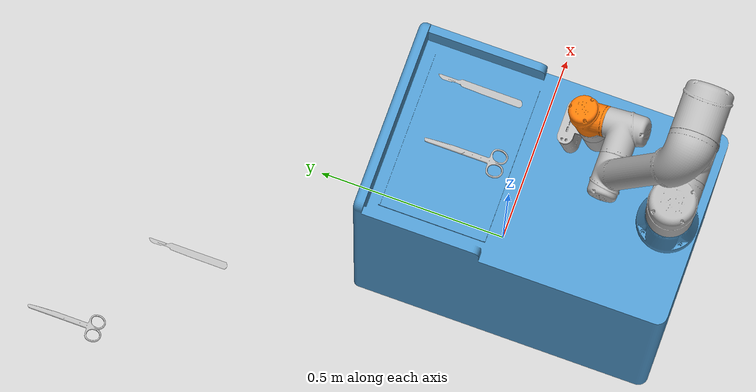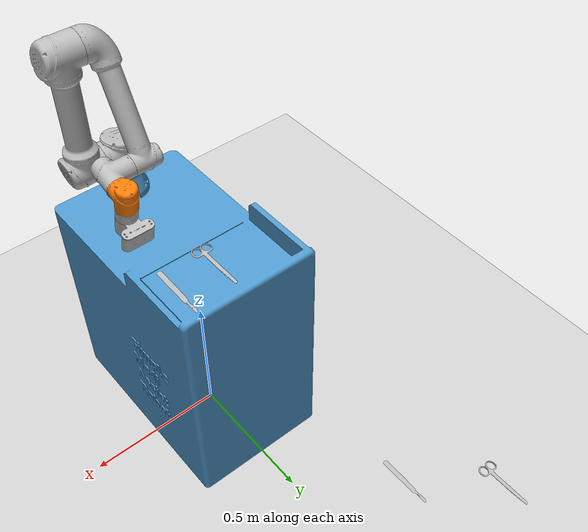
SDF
<sdf version='1.7'>
  <world name='default'>
    <light name='sun' type='directional'>
      <cast_shadows>1</cast_shadows>
      <pose>0 0 10 0 -0 0</pose>
      <diffuse>0.8 0.8 0.8 1</diffuse>
      <specular>0.2 0.2 0.2 1</specular>
      <attenuation>
        <range>1000</range>
        <constant>0.9</constant>
        <linear>0.01</linear>
        <quadratic>0.001</quadratic>
      </attenuation>
      <direction>-0.5 0.1 -0.9</direction>
      <spot>
        <inner_angle>0</inner_angle>
        <outer_angle>0</outer_angle>
        <falloff>0</falloff>
      </spot>
    </light>
    <model name='ground_plane'>
      <static>1</static>
      <link name='link'>
        <collision name='collision'>
          <geometry>
            <plane>
              <normal>0 0 1</normal>
              <size>100 100</size>
            </plane>
          </geometry>
          <surface>
            <friction>
              <ode>
                <mu>100</mu>
                <mu2>50</mu2>
              </ode>
              <torsional>
                <ode/>
              </torsional>
            </friction>
            <contact>
              <ode/>
            </contact>
            <bounce/>
          </surface>
          <max_contacts>10</max_contacts>
        </collision>
        <visual name='visual'>
          <cast_shadows>0</cast_shadows>
          <geometry>
            <plane>
              <normal>0 0 1</normal>
              <size>100 100</size>
            </plane>
          </geometry>
          <material>
            <script>
              <uri>file://media/materials/scripts/gazebo.material</uri>
              <name>Gazebo/Grey</name>
            </script>
          </material>
        </visual>
        <self_collide>0</self_collide>
        <enable_wind>0</enable_wind>
        <kinematic>0</kinematic>
      </link>
    </model>
    <gravity>0 0 -9.8</gravity>
    <magnetic_field>6e-06 2.3e-05 -4.2e-05</magnetic_field>
    <atmosphere type='adiabatic'/>
    <physics type='ode'>
      <max_step_size>0.001</max_step_size>
      <real_time_factor>1</real_time_factor>
      <real_time_update_rate>1000</real_time_update_rate>
    </physics>
    <scene>
      <ambient>0.4 0.4 0.4 1</ambient>
      <background>0.7 0.7 0.7 1</background>
      <shadows>1</shadows>
    </scene>
    <audio>
      <device>default</device>
    </audio>
    <wind/>
    <spherical_coordinates>
      <surface_model>EARTH_WGS84</surface_model>
      <latitude_deg>0</latitude_deg>
      <longitude_deg>0</longitude_deg>
      <elevation>0</elevation>
      <heading_deg>0</heading_deg>
    </spherical_coordinates>
    <model name='Model'>
      <joint name='virtual_joint' type='fixed'>
        <pose relative_to='__model__'>0 0 0 0 -0 0</pose>
        <parent>world</parent>
        <child>base_link</child>
      </joint>
      <link name='base_link'>
        <pose relative_to='virtual_joint'>0 0 0 0 -0 0</pose>
        <inertial>
          <pose>0.000917 -0.050562 0.50877 0 -0 0</pose>
          <mass>215.728</mass>
          <inertia>
            <ixx>34.1786</ixx>
            <ixy>-0.026992</ixy>
            <ixz>0.035376</ixz>
            <iyy>24.0907</iyy>
            <iyz>-1.45857</iyz>
            <izz>26.7821</izz>
          </inertia>
        </inertial>
        <collision name='base_link_collision'>
          <pose>0 0 0 0 -0 0</pose>
          <geometry>
            <mesh>
              <scale>1 1 1</scale>
              <uri>model://ros2_description/meshes/dae/base_linkV02.dae</uri>
            </mesh>
          </geometry>
          <max_contacts>10</max_contacts>
          <surface>
            <contact>
              <ode/>
            </contact>
            <bounce/>
            <friction>
              <torsional>
                <ode/>
              </torsional>
              <ode/>
            </friction>
          </surface>
        </collision>
        <visual name='base_link_visual'>
          <pose>0 0 0 0 -0 0</pose>
          <geometry>
            <mesh>
              <scale>1 1 1</scale>
              <uri>model://ros2_description/meshes/dae/base_linkV02.dae</uri>
            </mesh>
          </geometry>
        </visual>
        <self_collide>0</self_collide>
        <enable_wind>0</enable_wind>
        <kinematic>0</kinematic>
      </link>
      <joint name='Revolute_1' type='revolute'>
        <pose relative_to='base_link'>-0.003488 -0.397366 0.899482 0 -0 0</pose>
        <parent>base_link</parent>
        <child>link_1__1__1</child>
        <axis>
          <xyz>0 0 1</xyz>
          <limit>
            <lower>0</lower>
            <upper>6.28318</upper>
            <effort>100</effort>
            <velocity>100</velocity>
          </limit>
          <dynamics>
            <spring_reference>0</spring_reference>
            <spring_stiffness>0</spring_stiffness>
          </dynamics>
        </axis>
      </joint>
      <link name='link_1__1__1'>
        <pose relative_to='Revolute_1'>0 0 0 0 -0 0</pose>
        <inertial>
          <pose>0.010911 4e-06 0.06352 0 -0 0</pose>
          <mass>12.6229</mass>
          <inertia>
            <ixx>0.027067</ixx>
            <ixy>-1e-06</ixy>
            <ixz>-0.000743</ixz>
            <iyy>0.030809</iyy>
            <iyz>-1e-06</iyz>
            <izz>0.026243</izz>
          </inertia>
        </inertial>
        <collision name='link_1__1__1_collision'>
          <pose>0.003488 0.397366 -0.899482 0 -0 0</pose>
          <geometry>
            <mesh>
              <scale>0.001 0.001 0.001</scale>
              <uri>model://ros2_description/meshes/link_1__1__1.stl</uri>
            </mesh>
          </geometry>
          <max_contacts>10</max_contacts>
          <surface>
            <contact>
              <ode/>
            </contact>
            <bounce/>
            <friction>
              <torsional>
                <ode/>
              </torsional>
              <ode/>
            </friction>
          </surface>
        </collision>
        <visual name='link_1__1__1_visual'>
          <pose>0.003488 0.397366 -0.899482 0 -0 0</pose>
          <geometry>
            <mesh>
              <scale>1 1 1</scale>
              <uri>model://ros2_description/meshes/dae/link_1.dae</uri>
            </mesh>
          </geometry>
        </visual>
        <self_collide>0</self_collide>
        <enable_wind>0</enable_wind>
        <kinematic>0</kinematic>
      </link>
      <joint name='Revolute_2' type='revolute'>
        <pose relative_to='link_1__1__1'>0.0744 0 0.0634 0 -0 0</pose>
        <parent>link_1__1__1</parent>
        <child>link_2__1__1</child>
        <axis>
          <xyz>1 0 0</xyz>
          <limit>
            <lower>0</lower>
            <upper>6.28318</upper>
            <effort>100</effort>
            <velocity>100</velocity>
          </limit>
          <dynamics>
            <spring_reference>0</spring_reference>
            <spring_stiffness>0</spring_stiffness>
          </dynamics>
        </axis>
      </joint>
      <link name='link_2__1__1'>
        <pose relative_to='Revolute_2'>0 0 0 0 -0 0</pose>
        <inertial>
          <pose>0.063478 0 0.2125 0 -0 0</pose>
          <mass>38.2979</mass>
          <inertia>
            <ixx>1.17613</ixx>
            <ixy>0</ixy>
            <ixz>0</ixz>
            <iyy>1.18527</iyy>
            <iyz>-1.7e-05</iyz>
            <izz>0.066964</izz>
          </inertia>
        </inertial>
        <collision name='link_2__1__1_collision'>
          <pose>-0.070912 0.397366 -0.962882 0 -0 0</pose>
          <geometry>
            <mesh>
              <scale>0.001 0.001 0.001</scale>
              <uri>model://ros2_description/meshes/link_2__1__1.stl</uri>
            </mesh>
          </geometry>
          <max_contacts>10</max_contacts>
          <surface>
            <contact>
              <ode/>
            </contact>
            <bounce/>
            <friction>
              <torsional>
                <ode/>
              </torsional>
              <ode/>
            </friction>
          </surface>
        </collision>
        <visual name='link_2__1__1_visual'>
          <pose>-0.070912 0.397366 -0.962882 0 -0 0</pose>
          <geometry>
            <mesh>
              <scale>1 1 1</scale>
              <uri>model://ros2_description/meshes/dae/link_2.dae</uri>
            </mesh>
          </geometry>
        </visual>
        <self_collide>0</self_collide>
        <enable_wind>0</enable_wind>
        <kinematic>0</kinematic>
      </link>
      <joint name='Revolute_3' type='revolute'>
        <pose relative_to='link_2__1__1'>0 0 0.425 0 -0 0</pose>
        <parent>link_2__1__1</parent>
        <child>link_3__1__1</child>
        <axis>
          <xyz>-1 0 0</xyz>
          <limit>
            <lower>-5.23599</lower>
            <upper>0</upper>
            <effort>100</effort>
            <velocity>100</velocity>
          </limit>
          <dynamics>
            <spring_reference>0</spring_reference>
            <spring_stiffness>0</spring_stiffness>
          </dynamics>
        </axis>
      </joint>
      <link name='link_3__1__1'>
        <pose relative_to='Revolute_3'>0 0 0 0 -0 0</pose>
        <inertial>
          <pose>-0.061112 0.071394 -0.1531 0 -0 0</pose>
          <mass>21.7937</mass>
          <inertia>
            <ixx>0.480772</ixx>
            <ixy>0.013209</ixy>
            <ixz>-0.028324</ixz>
            <iyy>0.403523</iyy>
            <iyz>0.175801</iyz>
            <izz>0.10852</izz>
          </inertia>
        </inertial>
        <collision name='link_3__1__1_collision'>
          <pose>-0.070912 0.397366 -1.38788 0 -0 0</pose>
          <geometry>
            <mesh>
              <scale>0.001 0.001 0.001</scale>
              <uri>model://ros2_description/meshes/link_3__1__1.stl</uri>
            </mesh>
          </geometry>
          <max_contacts>10</max_contacts>
          <surface>
            <contact>
              <ode/>
            </contact>
            <bounce/>
            <friction>
              <torsional>
                <ode/>
              </torsional>
              <ode/>
            </friction>
          </surface>
        </collision>
        <visual name='link_3__1__1_visual'>
          <pose>-0.070912 0.397366 -1.38788 0 -0 0</pose>
          <geometry>
            <mesh>
              <scale>1 1 1</scale>
              <uri>model://ros2_description/meshes/dae/link_3.dae</uri>
            </mesh>
          </geometry>
        </visual>
        <self_collide>0</self_collide>
        <enable_wind>0</enable_wind>
        <kinematic>0</kinematic>
      </link>
      <joint name='Revolute_4' type='revolute'>
        <pose relative_to='link_3__1__1'>-0.0215 0.165751 -0.355454 0 -0 0</pose>
        <parent>link_3__1__1</parent>
        <child>link_4__1__1</child>
        <axis>
          <xyz>1 0 0</xyz>
          <limit>
            <lower>-6.28318</lower>
            <upper>0</upper>
            <effort>100</effort>
            <velocity>100</velocity>
          </limit>
          <dynamics>
            <spring_reference>0</spring_reference>
            <spring_stiffness>0</spring_stiffness>
          </dynamics>
        </axis>
      </joint>
      <link name='link_4__1__1'>
        <pose relative_to='Revolute_4'>0 0 0 0 -0 0</pose>
        <inertial>
          <pose>0.062077 -0.002502 0.000662 0 -0 0</pose>
          <mass>5.16296</mass>
          <inertia>
            <ixx>0.005384</ixx>
            <ixy>0.000197</ixy>
            <ixz>-5.1e-05</ixz>
            <iyy>0.007049</iyy>
            <iyz>0.000406</iyz>
            <izz>0.00846</izz>
          </inertia>
        </inertial>
        <collision name='link_4__1__1_collision'>
          <pose>-0.049412 0.231615 -1.03243 0 -0 0</pose>
          <geometry>
            <mesh>
              <scale>0.001 0.001 0.001</scale>
              <uri>model://ros2_description/meshes/link_4__1__1.stl</uri>
            </mesh>
          </geometry>
          <max_contacts>10</max_contacts>
          <surface>
            <contact>
              <ode/>
            </contact>
            <bounce/>
            <friction>
              <torsional>
                <ode/>
              </torsional>
              <ode/>
            </friction>
          </surface>
        </collision>
        <visual name='link_4__1__1_visual'>
          <pose>-0.049412 0.231615 -1.03243 0 -0 0</pose>
          <geometry>
            <mesh>
              <scale>0.001 0.001 0.001</scale>
              <uri>model://ros2_description/meshes/link_4__1__1.stl</uri>
            </mesh>
          </geometry>
        </visual>
        <self_collide>0</self_collide>
        <enable_wind>0</enable_wind>
        <kinematic>0</kinematic>
      </link>
      <joint name='Revolute_5' type='revolute'>
        <pose relative_to='link_4__1__1'>0.0804 0.044723 -0.011983 0 -0 0</pose>
        <parent>link_4__1__1</parent>
        <child>link_5__1__1</child>
        <axis>
          <xyz>0 0.965926 -0.258819</xyz>
          <limit>
            <lower>0</lower>
            <upper>6.28318</upper>
            <effort>100</effort>
            <velocity>100</velocity>
          </limit>
          <dynamics>
            <spring_reference>0</spring_reference>
            <spring_stiffness>0</spring_stiffness>
          </dynamics>
        </axis>
      </joint>
      <link name='link_5__1__1'>
        <pose relative_to='Revolute_5'>0 0 0 0 -0 0</pose>
        <inertial>
          <pose>9e-06 0.045356 -0.008065 0 -0 0</pose>
          <mass>4.25201</mass>
          <inertia>
            <ixx>0.005555</ixx>
            <ixy>-2e-06</ixy>
            <ixz>0</ixz>
            <iyy>0.004691</iyy>
            <iyz>-0.000303</iyz>
            <izz>0.00398</izz>
          </inertia>
        </inertial>
        <collision name='link_5__1__1_collision'>
          <pose>-0.129812 0.186892 -1.02045 0 -0 0</pose>
          <geometry>
            <mesh>
              <scale>0.001 0.001 0.001</scale>
              <uri>model://ros2_description/meshes/link_5__1__1.stl</uri>
            </mesh>
          </geometry>
          <max_contacts>10</max_contacts>
          <surface>
            <contact>
              <ode/>
            </contact>
            <bounce/>
            <friction>
              <torsional>
                <ode/>
              </torsional>
              <ode/>
            </friction>
          </surface>
        </collision>
        <visual name='link_5__1__1_visual'>
          <pose>-0.129812 0.186892 -1.02045 0 -0 0</pose>
          <geometry>
            <mesh>
              <scale>1 1 1</scale>
              <uri>model://ros2_description/meshes/dae/link_5.dae</uri>
            </mesh>
          </geometry>
        </visual>
        <self_collide>0</self_collide>
        <enable_wind>0</enable_wind>
        <kinematic>0</kinematic>
      </link>
      <joint name='Revolute_6' type='revolute'>
        <pose relative_to='link_5__1__1'>0 0.039752 -0.057964 0 -0 0</pose>
        <parent>link_5__1__1</parent>
        <child>link_6__1__1</child>
        <axis>
          <xyz>0 -0.258819 -0.965926</xyz>
          <limit>
            <lower>0</lower>
            <upper>6.28318</upper>
            <effort>100</effort>
            <velocity>100</velocity>
          </limit>
          <dynamics>
            <spring_reference>0</spring_reference>
            <spring_stiffness>0</spring_stiffness>
          </dynamics>
        </axis>
      </joint>
      <link name='link_6__1__1'>
        <pose relative_to='Revolute_6'>0 0 0 0 -0 0</pose>
        <inertial>
          <pose>-0.000553 0.012295 -0.065238 0 -0 0</pose>
          <mass>4.35397</mass>
          <inertia>
            <ixx>0.0103396</ixx>
            <ixy>6.4694e-05</ixy>
            <ixz>-7.13997e-05</ixz>
            <iyy>0.00920455</iyy>
            <iyz>0.00240999</iyz>
            <izz>0.00689185</izz>
          </inertia>
        </inertial>
        <collision name='link_6__1__1_collision'>
          <pose>-0.129812 0.14714 -0.962481 0 -0 0</pose>
          <geometry>
            <mesh>
              <scale>0.001 0.001 0.001</scale>
              <uri>model://ros2_description/meshes/link_6__1__1.stl</uri>
            </mesh>
          </geometry>
          <max_contacts>10</max_contacts>
          <surface>
            <contact>
              <ode/>
            </contact>
            <bounce/>
            <friction>
              <torsional>
                <ode/>
              </torsional>
              <ode/>
            </friction>
          </surface>
        </collision>
        <collision name='link_6__1__1_fixed_joint_lump__gripper_1_collision_1'>
          <pose>-0.129812 0.14714 -0.962481 0 -0 0</pose>
          <geometry>
            <mesh>
              <scale>0.001 0.001 0.001</scale>
              <uri>model://ros2_description/meshes/gripper_1.stl</uri>
            </mesh>
          </geometry>
          <max_contacts>10</max_contacts>
          <surface>
            <contact>
              <ode/>
            </contact>
            <bounce/>
            <friction>
              <torsional>
                <ode/>
              </torsional>
              <ode/>
            </friction>
          </surface>
        </collision>
        <collision name='link_6__1__1_fixed_joint_lump__femto_base_link_collision_2'>
          <pose>-0.129812 0.14714 -0.962481 0 -0 0</pose>
          <geometry>
            <mesh>
              <scale>0.001 0.001 0.001</scale>
              <uri>model://ros2_description/meshes/Femto_bolt_v1_1.stl</uri>
            </mesh>
          </geometry>
          <max_contacts>10</max_contacts>
          <surface>
            <contact>
              <ode/>
            </contact>
            <bounce/>
            <friction>
              <torsional>
                <ode/>
              </torsional>
              <ode/>
            </friction>
          </surface>
        </collision>
        <visual name='link_6__1__1_visual'>
          <pose>-0.129812 0.14714 -0.962481 0 -0 0</pose>
          <geometry>
            <mesh>
              <scale>0.001 0.001 0.001</scale>
              <uri>model://ros2_description/meshes/link_6__1__1.stl</uri>
            </mesh>
          </geometry>
        </visual>
        <visual name='link_6__1__1_fixed_joint_lump__gripper_1_visual_1'>
          <pose>-0.129812 0.14714 -0.962481 0 -0 0</pose>
          <geometry>
            <mesh>
              <scale>0.001 0.001 0.001</scale>
              <uri>model://ros2_description/meshes/gripper_1.stl</uri>
            </mesh>
          </geometry>
        </visual>
        <visual name='link_6__1__1_fixed_joint_lump__femto_base_link_visual_2'>
          <pose>-0.129812 0.14714 -0.962481 0 -0 0</pose>
          <geometry>
            <mesh>
              <scale>0.001 0.001 0.001</scale>
              <uri>model://ros2_description/meshes/Femto_bolt_v1_1.stl</uri>
            </mesh>
          </geometry>
        </visual>
        <sensor name='femto' type='depth'>
          <visualize>1</visualize>
          <update_rate>30</update_rate>
          <camera>
            <horizontal_fov>2.0944</horizontal_fov>
            <image>
              <format>B8G8R8</format>
              <width>512</width>
              <height>512</height>
            </image>
            <clip>
              <near>0.25</near>
              <far>2.21</far>
            </clip>
          </camera>
          <plugin name='femto_link_controller' filename='libgazebo_ros_camera.so'>
            <frame_name>femto_link_optical</frame_name>
            <min_depth>0.25</min_depth>
            <max_depth>2.21</max_depth>
          </plugin>
          <pose>-0.003225 0.030012 -0.127188 -3.14159 1.309 -1.5708</pose>
        </sensor>
        <self_collide>0</self_collide>
        <enable_wind>0</enable_wind>
        <kinematic>0</kinematic>
      </link>
      <static>0</static>
      <plugin name='gazebo_ros2_control' filename='libgazebo_ros2_control.so'>
        <robot_param>robot_description</robot_param>
        <robot_param_node>robot_state_publisher</robot_param_node>
        <parameters>/home/administrator/ros2_workshop_manipal/install/ros2_description/share/ros2_description/config/medi_assist_config.yaml</parameters>
      </plugin>
      <pose>0 0 0 0 -0 0</pose>
    </model>
    <model name='medical_scalp'>
      <static>0</static>
      <link name='link'>
        <gravity>1</gravity>
        <self_collide>0</self_collide>
        <inertial>
          <mass>0.08</mass>
          <inertia>
            <ixx>3e-05</ixx>
            <iyy>0.0003</iyy>
            <izz>0.0003</izz>
            <ixy>0</ixy>
            <ixz>0</ixz>
            <iyz>0</iyz>
          </inertia>
          <pose>0 0 0 0 -0 0</pose>
        </inertial>
        <visual name='visual'>
          <geometry>
            <mesh>
              <uri>model://medical_scalp/meshes/scaple_fusion360.stl</uri>
              <scale>1 1 1</scale>
            </mesh>
          </geometry>
          <cast_shadows>0</cast_shadows>
        </visual>
        <collision name='collision'>
          <pose>0 0 0 0 -0 1.5708</pose>
          <geometry>
            <box>
              <size>0.2 0.07 0.035</size>
            </box>
          </geometry>
          <surface>
            <contact>
              <ode/>
            </contact>
            <friction>
              <ode/>
              <torsional>
                <ode/>
              </torsional>
            </friction>
            <bounce/>
          </surface>
          <max_contacts>10</max_contacts>
        </collision>
        <enable_wind>0</enable_wind>
        <kinematic>0</kinematic>
      </link>
      <pose>-0.316625 0.744369 0 0 -0 0</pose>
    </model>
    <model name='medical_scalp_clone'>
      <static>0</static>
      <link name='link'>
        <gravity>1</gravity>
        <self_collide>0</self_collide>
        <inertial>
          <mass>0.08</mass>
          <inertia>
            <ixx>3e-05</ixx>
            <iyy>0.0003</iyy>
            <izz>0.0003</izz>
            <ixy>0</ixy>
            <ixz>0</ixz>
            <iyz>0</iyz>
          </inertia>
          <pose>0 0 0 0 -0 0</pose>
        </inertial>
        <visual name='visual'>
          <geometry>
            <mesh>
              <uri>model://medical_scalp/meshes/scaple_fusion360.stl</uri>
              <scale>1 1 1</scale>
            </mesh>
          </geometry>
          <cast_shadows>0</cast_shadows>
        </visual>
        <collision name='collision'>
          <pose>0 0 0 0 -0 1.5708</pose>
          <geometry>
            <box>
              <size>0.2 0.07 0.035</size>
            </box>
          </geometry>
          <surface>
            <contact>
              <ode/>
            </contact>
            <friction>
              <ode/>
              <torsional>
                <ode/>
              </torsional>
            </friction>
            <bounce/>
          </surface>
          <max_contacts>10</max_contacts>
        </collision>
        <enable_wind>0</enable_wind>
        <kinematic>0</kinematic>
      </link>
      <pose>0.149059 0.126307 0.823481 -2e-05 -1.2e-05 -0.007864</pose>
    </model>
    <model name='medical_scissors'>
      <static>0</static>
      <link name='link'>
        <gravity>1</gravity>
        <self_collide>0</self_collide>
        <inertial>
          <mass>0.08</mass>
          <inertia>
            <ixx>3e-05</ixx>
            <iyy>0.0003</iyy>
            <izz>0.0003</izz>
            <ixy>0</ixy>
            <ixz>0</ixz>
            <iyz>0</iyz>
          </inertia>
          <pose>0 0 0 0 -0 0</pose>
        </inertial>
        <visual name='visual'>
          <geometry>
            <mesh>
              <uri>model://medical_scissors/meshes/scissors_fusion360.stl</uri>
              <scale>1 1 1</scale>
            </mesh>
          </geometry>
          <cast_shadows>0</cast_shadows>
        </visual>
        <collision name='collision'>
          <pose>0 0 0 0 -0 1.5708</pose>
          <geometry>
            <box>
              <size>0.2 0.07 0.035</size>
            </box>
          </geometry>
          <surface>
            <contact>
              <ode/>
            </contact>
            <friction>
              <ode/>
              <torsional>
                <ode/>
              </torsional>
            </friction>
            <bounce/>
          </surface>
          <max_contacts>10</max_contacts>
        </collision>
        <enable_wind>0</enable_wind>
        <kinematic>0</kinematic>
      </link>
      <pose>-0.586407 0.975671 0 0 -0 0</pose>
    </model>
    <model name='medical_scissors_clone'>
      <static>0</static>
      <link name='link'>
        <gravity>1</gravity>
        <self_collide>0</self_collide>
        <inertial>
          <mass>0.08</mass>
          <inertia>
            <ixx>3e-05</ixx>
            <iyy>0.0003</iyy>
            <izz>0.0003</izz>
            <ixy>0</ixy>
            <ixz>0</ixz>
            <iyz>0</iyz>
          </inertia>
          <pose>0 0 0 0 -0 0</pose>
        </inertial>
        <visual name='visual'>
          <geometry>
            <mesh>
              <uri>model://medical_scissors/meshes/scissors_fusion360.stl</uri>
              <scale>1 1 1</scale>
            </mesh>
          </geometry>
          <cast_shadows>0</cast_shadows>
        </visual>
        <collision name='collision'>
          <pose>0 0 0 0 -0 1.5708</pose>
          <geometry>
            <box>
              <size>0.2 0.07 0.035</size>
            </box>
          </geometry>
          <surface>
            <contact>
              <ode/>
            </contact>
            <friction>
              <ode/>
              <torsional>
                <ode/>
              </torsional>
            </friction>
            <bounce/>
          </surface>
          <max_contacts>10</max_contacts>
        </collision>
        <enable_wind>0</enable_wind>
        <kinematic>0</kinematic>
      </link>
      <pose>-0.011209 0.102604 0.823485 -6.2e-05 -3.2e-05 -0.000863</pose>
    </model>
    <gui fullscreen='0'>
      <camera name='user_camera'>
        <pose>2.23816 1.08945 2.67179 0 0.543641 -2.84297</pose>
        <view_controller>orbit</view_controller>
        <projection_type>perspective</projection_type>
      </camera>
    </gui>
  </world>
</sdf>
